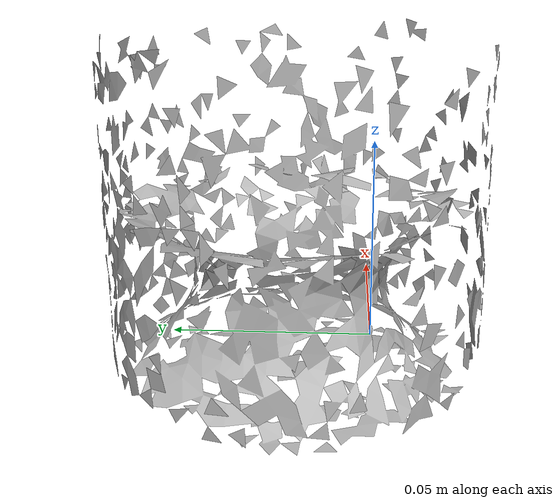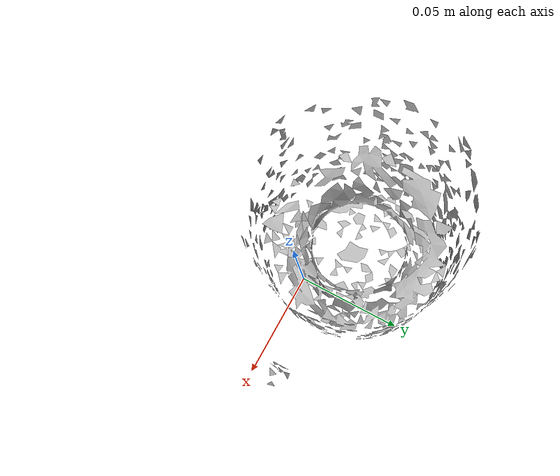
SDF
<?xml version="1.0" ?>
<sdf version="1.4">
  <model name='ycb_025_mug'>
    <link name='body'>
      <inertial>
        <mass>0.118</mass>
        <pose>-0.0188586065519 0.0165729622908 0.0268988522938 0 0 0</pose>
        <inertia>
          <ixx>0.000101690301436</ixx>
          <ixy>6.42850178059e-07</ixy>
          <ixz>-2.90301007713e-06</ixz>
          <iyy>0.000115579347511</iyy>
          <iyz>-2.51001765473e-06</iyz>
          <izz>0.00014729214583</izz>
        </inertia>
      </inertial>
      <visual name='ycb_025_mug_visual'>
        <pose>0 0 0 0 0 0</pose>
        <geometry>
          <mesh>
            <uri>model://ycb_025_mug/meshes/textured.dae</uri>
          </mesh>
        </geometry>
      </visual>
      <collision name='ycb_025_mug_collision'>
        <pose>0 0 0 0 0 0</pose>
        <geometry>
          <mesh>
            <uri>model://ycb_025_mug/meshes/nontextured.stl</uri>
          </mesh>
        </geometry>
        <max_contacts>10</max_contacts>
      </collision>
    </link>
  </model>
</sdf>
